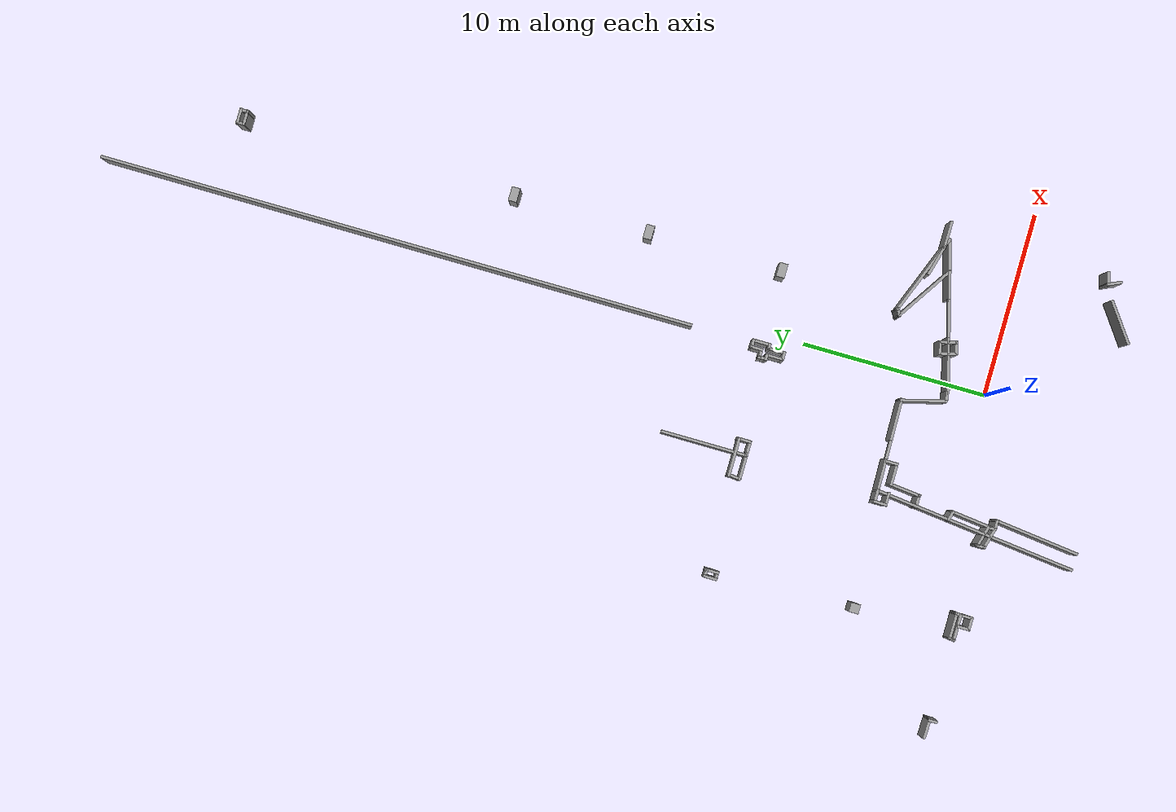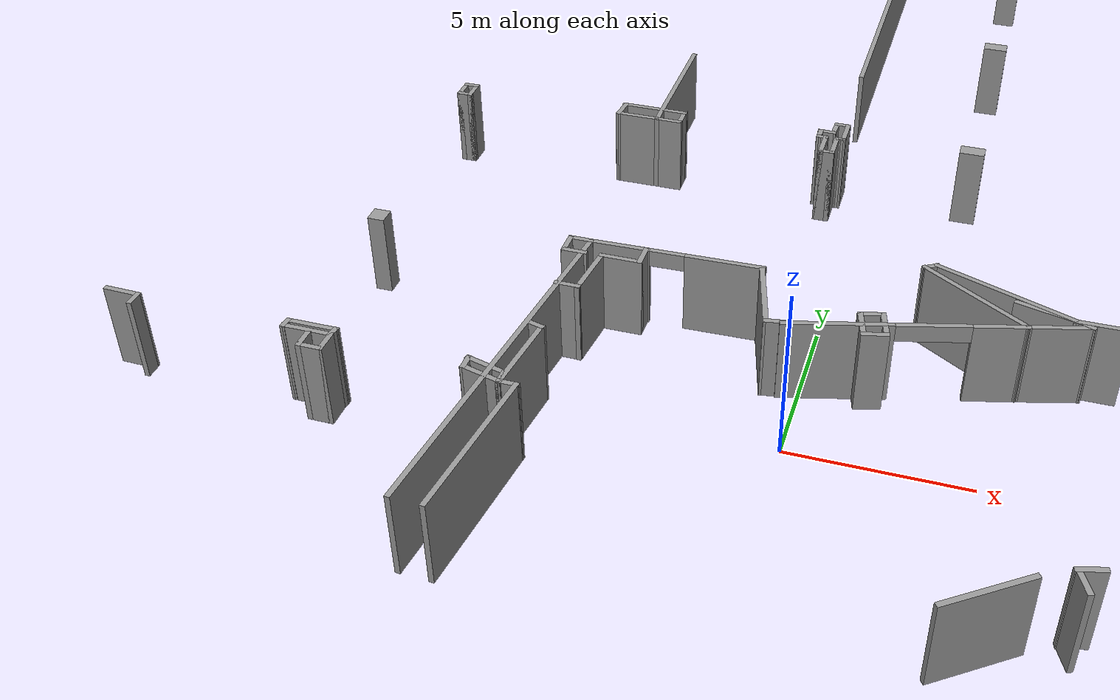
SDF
<sdf version="1.6">
 <model name="car_parking_underground_big_1">
  <pose>-9.36123 -7.37411 0 0 -0 0</pose>
  <link name="Wall_217">
   <collision name="Wall_217_Collision">
    <geometry><box><size>0.5 0.15 2.5</size></box></geometry>
    <pose>0 0 1.25 0 -0 0</pose>
   </collision>
   <visual name="Wall_217_Visual">
    <pose>0 0 1.25 0 -0 0</pose>
    <geometry><box><size>0.5 0.15 2.5</size></box></geometry>
    <material>
     <script><uri>file://media/materials/scripts/gazebo.material</uri><name>Gazebo/Grey</name></script>
     <ambient>1 1 1 1</ambient>
    </material>
    <meta><layer>0</layer></meta>
   </visual>
   <pose>1.5609 5.68266 0 0 -0 -1.5708</pose>
  </link>
  <link name="Wall_218">
   <collision name="Wall_218_Collision">
    <geometry><box><size>1.25 0.15 2.5</size></box></geometry>
    <pose>0 0 1.25 0 -0 0</pose>
   </collision>
   <visual name="Wall_218_Visual">
    <pose>0 0 1.25 0 -0 0</pose>
    <geometry><box><size>1.25 0.15 2.5</size></box></geometry>
    <material>
     <script><uri>file://media/materials/scripts/gazebo.material</uri><name>Gazebo/Grey</name></script>
     <ambient>1 1 1 1</ambient>
    </material>
    <meta><layer>0</layer></meta>
   </visual>
   <pose>2.09216 5.36531 0 0 -0 -0.261799</pose>
  </link>
  <link name="Wall_219">
   <collision name="Wall_219_Collision">
    <geometry><box><size>0.5 0.15 2.5</size></box></geometry>
    <pose>0 0 1.25 0 -0 0</pose>
   </collision>
   <visual name="Wall_219_Visual">
    <pose>0 0 1.25 0 -0 0</pose>
    <geometry><box><size>0.5 0.15 2.5</size></box></geometry>
    <material>
     <script><uri>file://media/materials/scripts/gazebo.material</uri><name>Gazebo/Grey</name></script>
     <ambient>1 1 1 1</ambient>
    </material>
    <meta><layer>0</layer></meta>
   </visual>
   <pose>2.62342 5.39796 0 0 -0 1.5708</pose>
  </link>
  <link name="Wall_220">
   <collision name="Wall_220_Collision">
    <geometry><box><size>1.25 0.15 2.5</size></box></geometry>
    <pose>0 0 1.25 0 -0 0</pose>
   </collision>
   <visual name="Wall_220_Visual">
    <pose>0 0 1.25 0 -0 0</pose>
    <geometry><box><size>1.25 0.15 2.5</size></box></geometry>
    <material>
     <script><uri>file://media/materials/scripts/gazebo.material</uri><name>Gazebo/Grey</name></script>
     <ambient>1 1 1 1</ambient>
    </material>
    <meta><layer>0</layer></meta>
   </visual>
   <pose>2.09216 5.71531 0 0 -0 2.87979</pose>
  </link>
  <link name="Wall_223">
   <collision name="Wall_223_Collision">
    <geometry><box><size>1.75 0.15 2.5</size></box></geometry>
    <pose>0 0 1.25 0 -0 0</pose>
   </collision>
   <visual name="Wall_223_Visual">
    <pose>0 0 1.25 0 -0 0</pose>
    <geometry><box><size>1.75 0.15 2.5</size></box></geometry>
    <material>
     <script><uri>file://media/materials/scripts/gazebo.material</uri><name>Gazebo/Grey</name></script>
     <ambient>1 1 1 1</ambient>
    </material>
    <meta><layer>0</layer></meta>
   </visual>
   <pose>15.3498 11.9828 0 0 -0 -0.261799</pose>
  </link>
  <link name="Wall_224">
   <collision name="Wall_224_Collision">
    <geometry><box><size>1.5 0.15 2.5</size></box></geometry>
    <pose>0 0 1.25 0 -0 0</pose>
   </collision>
   <visual name="Wall_224_Visual">
    <pose>0 0 1.25 0 -0 0</pose>
    <geometry><box><size>1.5 0.15 2.5</size></box></geometry>
    <material>
     <script><uri>file://media/materials/scripts/gazebo.material</uri><name>Gazebo/Grey</name></script>
     <ambient>1 1 1 1</ambient>
    </material>
    <meta><layer>0</layer></meta>
   </visual>
   <pose>16.7975 11.7757 0 0 -0 0</pose>
  </link>
  <link name="Wall_28">
   <collision name="Wall_28_Collision">
    <geometry><box><size>2.47805 0.15 2.5</size></box></geometry>
    <pose>0 0 1.25 0 -0 0</pose>
   </collision>
   <visual name="Wall_28_Visual">
    <pose>0 0 1.25 0 -0 0</pose>
    <geometry><box><size>2.47805 0.15 2.5</size></box></geometry>
    <material>
     <script><uri>file://media/materials/scripts/gazebo.material</uri><name>Gazebo/Grey</name></script>
     <ambient>1 1 1 1</ambient>
    </material>
    <meta><layer>0</layer></meta>
   </visual>
   <pose>14.8476 1.85437 0 0 -0 0.628667</pose>
  </link>
  <link name="Wall_33">
   <collision name="Wall_33_Collision">
    <geometry><box><size>4.67494 0.15 2.5</size></box></geometry>
    <pose>0 0 1.25 0 -0 0</pose>
   </collision>
   <visual name="Wall_33_Visual">
    <pose>0 0 1.25 0 -0 0</pose>
    <geometry><box><size>4.67494 0.15 2.5</size></box></geometry>
    <material>
     <script><uri>file://media/materials/scripts/gazebo.material</uri><name>Gazebo/Grey</name></script>
     <ambient>1 1 1 1</ambient>
    </material>
    <meta><layer>0</layer></meta>
   </visual>
   <pose>14.4486 12.4344 0 0 -0 2.773</pose>
  </link>
  <link name="Wall_34">
   <collision name="Wall_34_Collision">
    <geometry><box><size>0.5 0.15 2.5</size></box></geometry>
    <pose>0 0 1.25 0 -0 0</pose>
   </collision>
   <visual name="Wall_34_Visual">
    <pose>0 0 1.25 0 -0 0</pose>
    <geometry><box><size>0.5 0.15 2.5</size></box></geometry>
    <material>
     <script><uri>file://media/materials/scripts/gazebo.material</uri><name>Gazebo/Grey</name></script>
     <ambient>1 1 1 1</ambient>
    </material>
    <meta><layer>0</layer></meta>
   </visual>
   <pose>12.1865 13.162 0 0 -0 -2.61799</pose>
  </link>
  <link name="Wall_35">
   <collision name="Wall_35_Collision">
    <geometry><box><size>3.62849 0.15 2.5</size></box></geometry>
    <pose>0 0 1.25 0 -0 0</pose>
   </collision>
   <visual name="Wall_35_Visual">
    <pose>0 0 1.25 0 -0 0</pose>
    <geometry><box><size>3.62849 0.15 2.5</size></box></geometry>
    <material>
     <script><uri>file://media/materials/scripts/gazebo.material</uri><name>Gazebo/Grey</name></script>
     <ambient>1 1 1 1</ambient>
    </material>
    <meta><layer>0</layer></meta>
   </visual>
   <pose>13.4916 12.1241 0 0 -0 -0.578154</pose>
  </link>
  <link name="Wall_36">
   <pose>11.8813 10.3519 0 0 -0 -2.87979</pose>
   <visual name="Wall_36_Visual_0">
    <pose>-2.49803 0 1.25 0 -0 0</pose>
    <geometry><box><size>1.50394 0.15 2.5</size></box></geometry>
    <material>
     <script><uri>file://media/materials/scripts/gazebo.material</uri><name>Gazebo/Grey</name></script>
     <ambient>1 1 1 1</ambient>
    </material>
    <meta><layer>0</layer></meta>
   </visual>
   <collision name="Wall_36_Collision_0">
    <geometry><box><size>1.50394 0.15 2.5</size></box></geometry>
    <pose>-2.49803 0 1.25 0 -0 0</pose>
   </collision>
   <visual name="Wall_36_Visual_1">
    <pose>1.75197 0 1.25 0 -0 0</pose>
    <geometry><box><size>2.99606 0.15 2.5</size></box></geometry>
    <material>
     <script><uri>file://media/materials/scripts/gazebo.material</uri><name>Gazebo/Grey</name></script>
     <ambient>1 1 1 1</ambient>
    </material>
    <meta><layer>0</layer></meta>
   </visual>
   <collision name="Wall_36_Collision_1">
    <geometry><box><size>2.99606 0.15 2.5</size></box></geometry>
    <pose>1.75197 0 1.25 0 -0 0</pose>
   </collision>
   <visual name="Wall_36_Visual_2">
    <pose>-0.746059 0 2.25 0 -0 0</pose>
    <geometry><box><size>2 0.15 0.5</size></box></geometry>
    <material>
     <script><uri>file://media/materials/scripts/gazebo.material</uri><name>Gazebo/Grey</name></script>
     <ambient>1 1 1 1</ambient>
    </material>
    <meta><layer>0</layer></meta>
   </visual>
   <collision name="Wall_36_Collision_2">
    <geometry><box><size>2 0.15 0.5</size></box></geometry>
    <pose>-0.746059 0 2.25 0 -0 0</pose>
   </collision>
  </link>
  <link name="Wall_37">
   <collision name="Wall_37_Collision">
    <geometry><box><size>0.59124 0.15 2.5</size></box></geometry>
    <pose>0 0 1.25 0 -0 0</pose>
   </collision>
   <visual name="Wall_37_Visual">
    <pose>0 0 1.25 0 -0 0</pose>
    <geometry><box><size>0.59124 0.15 2.5</size></box></geometry>
    <material>
     <script><uri>file://media/materials/scripts/gazebo.material</uri><name>Gazebo/Grey</name></script>
     <ambient>1 1 1 1</ambient>
    </material>
    <meta><layer>0</layer></meta>
   </visual>
   <pose>8.59658 9.53088 0 0 -0 -2.98491</pose>
  </link>
  <link name="Wall_38">
   <collision name="Wall_38_Collision">
    <geometry><box><size>2.5 0.15 2.5</size></box></geometry>
    <pose>0 0 1.25 0 -0 0</pose>
   </collision>
   <visual name="Wall_38_Visual">
    <pose>0 0 1.25 0 -0 0</pose>
    <geometry><box><size>2.5 0.15 2.5</size></box></geometry>
    <material>
     <script><uri>file://media/materials/scripts/gazebo.material</uri><name>Gazebo/Grey</name></script>
     <ambient>1 1 1 1</ambient>
    </material>
    <meta><layer>0</layer></meta>
   </visual>
   <pose>8.07455 10.6314 0 0 -0 1.8326</pose>
  </link>
  <link name="Wall_39">
   <pose>5.34919 11.7136 0 0 -0 -3.12011</pose>
   <visual name="Wall_39_Visual_0">
    <pose>-1.39099 0 1.25 0 -0 0</pose>
    <geometry><box><size>2.28201 0.15 2.5</size></box></geometry>
    <material>
     <script><uri>file://media/materials/scripts/gazebo.material</uri><name>Gazebo/Grey</name></script>
     <ambient>1 1 1 1</ambient>
    </material>
    <meta><layer>0</layer></meta>
   </visual>
   <collision name="Wall_39_Collision_0">
    <geometry><box><size>2.28201 0.15 2.5</size></box></geometry>
    <pose>-1.39099 0 1.25 0 -0 0</pose>
   </collision>
   <visual name="Wall_39_Visual_1">
    <pose>1.64101 0 1.25 0 -0 0</pose>
    <geometry><box><size>1.78198 0.15 2.5</size></box></geometry>
    <material>
     <script><uri>file://media/materials/scripts/gazebo.material</uri><name>Gazebo/Grey</name></script>
     <ambient>1 1 1 1</ambient>
    </material>
    <meta><layer>0</layer></meta>
   </visual>
   <collision name="Wall_39_Collision_1">
    <geometry><box><size>1.78198 0.15 2.5</size></box></geometry>
    <pose>1.64101 0 1.25 0 -0 0</pose>
   </collision>
   <visual name="Wall_39_Visual_2">
    <pose>0.250018 0 2.25 0 -0 0</pose>
    <geometry><box><size>1 0.15 0.5</size></box></geometry>
    <material>
     <script><uri>file://media/materials/scripts/gazebo.material</uri><name>Gazebo/Grey</name></script>
     <ambient>1 1 1 1</ambient>
    </material>
    <meta><layer>0</layer></meta>
   </visual>
   <collision name="Wall_39_Collision_2">
    <geometry><box><size>1 0.15 0.5</size></box></geometry>
    <pose>0.250018 0 2.25 0 -0 0</pose>
   </collision>
  </link>
  <link name="Wall_391">
   <collision name="Wall_391_Collision">
    <geometry><box><size>0.75 0.45 2.5</size></box></geometry>
    <pose>0 0 1.25 0 -0 0</pose>
   </collision>
   <visual name="Wall_391_Visual">
    <pose>0 0 1.25 0 -0 0</pose>
    <geometry><box><size>0.75 0.45 2.5</size></box></geometry>
    <material>
     <script><uri>file://media/materials/scripts/gazebo.material</uri><name>Gazebo/Grey</name></script>
     <ambient>1 1 1 1</ambient>
    </material>
    <meta><layer>0</layer></meta>
   </visual>
   <pose>12.6174 26.8923 0 0 -0 0</pose>
  </link>
  <link name="Wall_396">
   <collision name="Wall_396_Collision">
    <geometry><box><size>0.75 0.45 2.5</size></box></geometry>
    <pose>0 0 1.25 0 -0 0</pose>
   </collision>
   <visual name="Wall_396_Visual">
    <pose>0 0 1.25 0 -0 0</pose>
    <geometry><box><size>0.75 0.45 2.5</size></box></geometry>
    <material>
     <script><uri>file://media/materials/scripts/gazebo.material</uri><name>Gazebo/Grey</name></script>
     <ambient>1 1 1 1</ambient>
    </material>
    <meta><layer>0</layer></meta>
   </visual>
   <pose>12.6092 19.6331 0 0 -0 0</pose>
  </link>
  <link name="Wall_40">
   <collision name="Wall_40_Collision">
    <geometry><box><size>11.0603 0.15 2.5</size></box></geometry>
    <pose>0 0 1.25 0 -0 0</pose>
   </collision>
   <visual name="Wall_40_Visual">
    <pose>0 0 1.25 0 -0 0</pose>
    <geometry><box><size>11.0603 0.15 2.5</size></box></geometry>
    <material>
     <script><uri>file://media/materials/scripts/gazebo.material</uri><name>Gazebo/Grey</name></script>
     <ambient>1 1 1 1</ambient>
    </material>
    <meta><layer>0</layer></meta>
   </visual>
   <pose>2.2875 6.23938 0 0 -0 -1.68198</pose>
  </link>
  <link name="Wall_401">
   <collision name="Wall_401_Collision">
    <geometry><box><size>0.5 0.15 2.5</size></box></geometry>
    <pose>0 0 1.25 0 -0 0</pose>
   </collision>
   <visual name="Wall_401_Visual">
    <pose>0 0 1.25 0 -0 0</pose>
    <geometry><box><size>0.5 0.15 2.5</size></box></geometry>
    <material>
     <script><uri>file://media/materials/scripts/gazebo.material</uri><name>Gazebo/Grey</name></script>
     <ambient>1 1 1 1</ambient>
    </material>
    <meta><layer>0</layer></meta>
   </visual>
   <pose>8.49677 20.0573 0 0 -0 0</pose>
  </link>
  <link name="Wall_402">
   <collision name="Wall_402_Collision">
    <geometry><box><size>1.02589 0.15 2.5</size></box></geometry>
    <pose>0 0 1.25 0 -0 0</pose>
   </collision>
   <visual name="Wall_402_Visual">
    <pose>0 0 1.25 0 -0 0</pose>
    <geometry><box><size>1.02589 0.15 2.5</size></box></geometry>
    <material>
     <script><uri>file://media/materials/scripts/gazebo.material</uri><name>Gazebo/Grey</name></script>
     <ambient>1 1 1 1</ambient>
    </material>
    <meta><layer>0</layer></meta>
   </visual>
   <pose>8.67347 19.6193 0 0 -0 -1.56691</pose>
  </link>
  <link name="Wall_403">
   <collision name="Wall_403_Collision">
    <geometry><box><size>0.25 0.15 2.5</size></box></geometry>
    <pose>0 0 1.25 0 -0 0</pose>
   </collision>
   <visual name="Wall_403_Visual">
    <pose>0 0 1.25 0 -0 0</pose>
    <geometry><box><size>0.25 0.15 2.5</size></box></geometry>
    <material>
     <script><uri>file://media/materials/scripts/gazebo.material</uri><name>Gazebo/Grey</name></script>
     <ambient>1 1 1 1</ambient>
    </material>
    <meta><layer>0</layer></meta>
   </visual>
   <pose>8.62517 19.1814 0 0 -0 3.14159</pose>
  </link>
  <link name="Wall_404">
   <collision name="Wall_404_Collision">
    <geometry><box><size>0.25 0.15 2.5</size></box></geometry>
    <pose>0 0 1.25 0 -0 0</pose>
   </collision>
   <visual name="Wall_404_Visual">
    <pose>0 0 1.25 0 -0 0</pose>
    <geometry><box><size>0.25 0.15 2.5</size></box></geometry>
    <material>
     <script><uri>file://media/materials/scripts/gazebo.material</uri><name>Gazebo/Grey</name></script>
     <ambient>1 1 1 1</ambient>
    </material>
    <meta><layer>0</layer></meta>
   </visual>
   <pose>8.52517 19.1814 0 0 -0 3.14159</pose>
  </link>
  <link name="Wall_405">
   <collision name="Wall_405_Collision">
    <geometry><box><size>1 0.15 2.5</size></box></geometry>
    <pose>0 0 1.25 0 -0 0</pose>
   </collision>
   <visual name="Wall_405_Visual">
    <pose>0 0 1.25 0 -0 0</pose>
    <geometry><box><size>1 0.15 2.5</size></box></geometry>
    <material>
     <script><uri>file://media/materials/scripts/gazebo.material</uri><name>Gazebo/Grey</name></script>
     <ambient>1 1 1 1</ambient>
    </material>
    <meta><layer>0</layer></meta>
   </visual>
   <pose>8.47517 18.7564 0 0 -0 -1.5708</pose>
  </link>
  <link name="Wall_406">
   <collision name="Wall_406_Collision">
    <geometry><box><size>0.5 0.15 2.5</size></box></geometry>
    <pose>0 0 1.25 0 -0 0</pose>
   </collision>
   <visual name="Wall_406_Visual">
    <pose>0 0 1.25 0 -0 0</pose>
    <geometry><box><size>0.5 0.15 2.5</size></box></geometry>
    <material>
     <script><uri>file://media/materials/scripts/gazebo.material</uri><name>Gazebo/Grey</name></script>
     <ambient>1 1 1 1</ambient>
    </material>
    <meta><layer>0</layer></meta>
   </visual>
   <pose>8.30017 18.3314 0 0 -0 3.14159</pose>
  </link>
  <link name="Wall_407">
   <collision name="Wall_407_Collision">
    <geometry><box><size>1 0.15 2.5</size></box></geometry>
    <pose>0 0 1.25 0 -0 0</pose>
   </collision>
   <visual name="Wall_407_Visual">
    <pose>0 0 1.25 0 -0 0</pose>
    <geometry><box><size>1 0.15 2.5</size></box></geometry>
    <material>
     <script><uri>file://media/materials/scripts/gazebo.material</uri><name>Gazebo/Grey</name></script>
     <ambient>1 1 1 1</ambient>
    </material>
    <meta><layer>0</layer></meta>
   </visual>
   <pose>8.12517 18.7564 0 0 -0 1.5708</pose>
  </link>
  <link name="Wall_408">
   <collision name="Wall_408_Collision">
    <geometry><box><size>0.369827 0.15 2.5</size></box></geometry>
    <pose>0 0 1.25 0 -0 0</pose>
   </collision>
   <visual name="Wall_408_Visual">
    <pose>0 0 1.25 0 -0 0</pose>
    <geometry><box><size>0.369827 0.15 2.5</size></box></geometry>
    <material>
     <script><uri>file://media/materials/scripts/gazebo.material</uri><name>Gazebo/Grey</name></script>
     <ambient>1 1 1 1</ambient>
    </material>
    <meta><layer>0</layer></meta>
   </visual>
   <pose>8.01542 19.1754 0 0 -0 -3.08731</pose>
  </link>
  <link name="Wall_409">
   <collision name="Wall_409_Collision">
    <geometry><box><size>0.5 0.15 2.5</size></box></geometry>
    <pose>0 0 1.25 0 -0 0</pose>
   </collision>
   <visual name="Wall_409_Visual">
    <pose>0 0 1.25 0 -0 0</pose>
    <geometry><box><size>0.5 0.15 2.5</size></box></geometry>
    <material>
     <script><uri>file://media/materials/scripts/gazebo.material</uri><name>Gazebo/Grey</name></script>
     <ambient>1 1 1 1</ambient>
    </material>
    <meta><layer>0</layer></meta>
   </visual>
   <pose>7.90567 19.3445 0 0 -0 1.5708</pose>
  </link>
  <link name="Wall_410">
   <collision name="Wall_410_Collision">
    <geometry><box><size>0.570358 0.15 2.5</size></box></geometry>
    <pose>0 0 1.25 0 -0 0</pose>
   </collision>
   <visual name="Wall_410_Visual">
    <pose>0 0 1.25 0 -0 0</pose>
    <geometry><box><size>0.570358 0.15 2.5</size></box></geometry>
    <material>
     <script><uri>file://media/materials/scripts/gazebo.material</uri><name>Gazebo/Grey</name></script>
     <ambient>1 1 1 1</ambient>
    </material>
    <meta><layer>0</layer></meta>
   </visual>
   <pose>8.09826 19.5195 0 0 -0 0</pose>
  </link>
  <link name="Wall_411">
   <collision name="Wall_411_Collision">
    <geometry><box><size>0.687973 0.15 2.5</size></box></geometry>
    <pose>0 0 1.25 0 -0 0</pose>
   </collision>
   <visual name="Wall_411_Visual">
    <pose>0 0 1.25 0 -0 0</pose>
    <geometry><box><size>0.687973 0.15 2.5</size></box></geometry>
    <material>
     <script><uri>file://media/materials/scripts/gazebo.material</uri><name>Gazebo/Grey</name></script>
     <ambient>1 1 1 1</ambient>
    </material>
    <meta><layer>0</layer></meta>
   </visual>
   <pose>8.3151 19.7884 0 0 -0 1.54602</pose>
  </link>
  <link name="Wall_413">
   <collision name="Wall_413_Collision">
    <geometry><box><size>4.71462 0.15 2.5</size></box></geometry>
    <pose>0 0 1.25 0 -0 0</pose>
   </collision>
   <visual name="Wall_413_Visual">
    <pose>0 0 1.25 0 -0 0</pose>
    <geometry><box><size>4.71462 0.15 2.5</size></box></geometry>
    <material>
     <script><uri>file://media/materials/scripts/gazebo.material</uri><name>Gazebo/Grey</name></script>
     <ambient>1 1 1 1</ambient>
    </material>
    <meta><layer>0</layer></meta>
   </visual>
   <pose>2.76177 21.0549 0 0 -0 -1.5708</pose>
  </link>
  <link name="Wall_414">
   <collision name="Wall_414_Collision">
    <geometry><box><size>0.889164 0.15 2.5</size></box></geometry>
    <pose>0 0 1.25 0 -0 0</pose>
   </collision>
   <visual name="Wall_414_Visual">
    <pose>0 0 1.25 0 -0 0</pose>
    <geometry><box><size>0.889164 0.15 2.5</size></box></geometry>
    <material>
     <script><uri>file://media/materials/scripts/gazebo.material</uri><name>Gazebo/Grey</name></script>
     <ambient>1 1 1 1</ambient>
    </material>
    <meta><layer>0</layer></meta>
   </visual>
   <pose>3.13135 18.7726 0 0 -0 0</pose>
  </link>
  <link name="Wall_415">
   <collision name="Wall_415_Collision">
    <geometry><box><size>0.75 0.15 2.5</size></box></geometry>
    <pose>0 0 1.25 0 -0 0</pose>
   </collision>
   <visual name="Wall_415_Visual">
    <pose>0 0 1.25 0 -0 0</pose>
    <geometry><box><size>0.75 0.15 2.5</size></box></geometry>
    <material>
     <script><uri>file://media/materials/scripts/gazebo.material</uri><name>Gazebo/Grey</name></script>
     <ambient>1 1 1 1</ambient>
    </material>
    <meta><layer>0</layer></meta>
   </visual>
   <pose>3.50093 19.108 0 0 -0 1.5708</pose>
  </link>
  <link name="Wall_416">
   <collision name="Wall_416_Collision">
    <geometry><box><size>2.13446 0.15 2.5</size></box></geometry>
    <pose>0 0 1.25 0 -0 0</pose>
   </collision>
   <visual name="Wall_416_Visual">
    <pose>0 0 1.25 0 -0 0</pose>
    <geometry><box><size>2.13446 0.15 2.5</size></box></geometry>
    <material>
     <script><uri>file://media/materials/scripts/gazebo.material</uri><name>Gazebo/Grey</name></script>
     <ambient>1 1 1 1</ambient>
    </material>
    <meta><layer>0</layer></meta>
   </visual>
   <pose>2.5087 19.3726 0 0 -0 3.14159</pose>
  </link>
  <link name="Wall_417">
   <collision name="Wall_417_Collision">
    <geometry><box><size>0.753991 0.15 2.5</size></box></geometry>
    <pose>0 0 1.25 0 -0 0</pose>
   </collision>
   <visual name="Wall_417_Visual">
    <pose>0 0 1.25 0 -0 0</pose>
    <geometry><box><size>0.753991 0.15 2.5</size></box></geometry>
    <material>
     <script><uri>file://media/materials/scripts/gazebo.material</uri><name>Gazebo/Grey</name></script>
     <ambient>1 1 1 1</ambient>
    </material>
    <meta><layer>0</layer></meta>
   </visual>
   <pose>1.51719 19.0726 0 0 -0 -1.68582</pose>
  </link>
  <link name="Wall_418">
   <collision name="Wall_418_Collision">
    <geometry><box><size>1.5 0.15 2.5</size></box></geometry>
    <pose>0 0 1.25 0 -0 0</pose>
   </collision>
   <visual name="Wall_418_Visual">
    <pose>0 0 1.25 0 -0 0</pose>
    <geometry><box><size>1.5 0.15 2.5</size></box></geometry>
    <material>
     <script><uri>file://media/materials/scripts/gazebo.material</uri><name>Gazebo/Grey</name></script>
     <ambient>1 1 1 1</ambient>
    </material>
    <meta><layer>0</layer></meta>
   </visual>
   <pose>2.15752 18.7726 0 0 -0 0</pose>
  </link>
  <link name="Wall_420">
   <collision name="Wall_420_Collision">
    <geometry><box><size>0.5 0.15 2.5</size></box></geometry>
    <pose>0 0 1.25 0 -0 0</pose>
   </collision>
   <visual name="Wall_420_Visual">
    <pose>0 0 1.25 0 -0 0</pose>
    <geometry><box><size>0.5 0.15 2.5</size></box></geometry>
    <material>
     <script><uri>file://media/materials/scripts/gazebo.material</uri><name>Gazebo/Grey</name></script>
     <ambient>1 1 1 1</ambient>
    </material>
    <meta><layer>0</layer></meta>
   </visual>
   <pose>-3.72323 19.1373 0 0 -0 0</pose>
  </link>
  <link name="Wall_421">
   <collision name="Wall_421_Collision">
    <geometry><box><size>0.75 0.15 2.5</size></box></geometry>
    <pose>0 0 1.25 0 -0 0</pose>
   </collision>
   <visual name="Wall_421_Visual">
    <pose>0 0 1.25 0 -0 0</pose>
    <geometry><box><size>0.75 0.15 2.5</size></box></geometry>
    <material>
     <script><uri>file://media/materials/scripts/gazebo.material</uri><name>Gazebo/Grey</name></script>
     <ambient>1 1 1 1</ambient>
    </material>
    <meta><layer>0</layer></meta>
   </visual>
   <pose>-3.54823 18.8373 0 0 -0 -1.5708</pose>
  </link>
  <link name="Wall_422">
   <collision name="Wall_422_Collision">
    <geometry><box><size>0.5 0.15 2.5</size></box></geometry>
    <pose>0 0 1.25 0 -0 0</pose>
   </collision>
   <visual name="Wall_422_Visual">
    <pose>0 0 1.25 0 -0 0</pose>
    <geometry><box><size>0.5 0.15 2.5</size></box></geometry>
    <material>
     <script><uri>file://media/materials/scripts/gazebo.material</uri><name>Gazebo/Grey</name></script>
     <ambient>1 1 1 1</ambient>
    </material>
    <meta><layer>0</layer></meta>
   </visual>
   <pose>-3.72323 18.5373 0 0 -0 3.14159</pose>
  </link>
  <link name="Wall_423">
   <collision name="Wall_423_Collision">
    <geometry><box><size>0.75 0.15 2.5</size></box></geometry>
    <pose>0 0 1.25 0 -0 0</pose>
   </collision>
   <visual name="Wall_423_Visual">
    <pose>0 0 1.25 0 -0 0</pose>
    <geometry><box><size>0.75 0.15 2.5</size></box></geometry>
    <material>
     <script><uri>file://media/materials/scripts/gazebo.material</uri><name>Gazebo/Grey</name></script>
     <ambient>1 1 1 1</ambient>
    </material>
    <meta><layer>0</layer></meta>
   </visual>
   <pose>-3.89823 18.8373 0 0 -0 1.5708</pose>
  </link>
  <link name="Wall_502">
   <collision name="Wall_502_Collision">
    <geometry><box><size>0.75 0.45 2.5</size></box></geometry>
    <pose>0 0 1.25 0 -0 0</pose>
   </collision>
   <visual name="Wall_502_Visual">
    <pose>0 0 1.25 0 -0 0</pose>
    <geometry><box><size>0.75 0.45 2.5</size></box></geometry>
    <material>
     <script><uri>file://media/materials/scripts/gazebo.material</uri><name>Gazebo/Grey</name></script>
     <ambient>1 1 1 1</ambient>
    </material>
    <meta><layer>0</layer></meta>
   </visual>
   <pose>12.578 34.2231 0 0 -0 0</pose>
  </link>
  <link name="Wall_524">
   <collision name="Wall_524_Collision">
    <geometry><box><size>0.75 0.15 2.5</size></box></geometry>
    <pose>0 0 1.25 0 -0 0</pose>
   </collision>
   <visual name="Wall_524_Visual">
    <pose>0 0 1.25 0 -0 0</pose>
    <geometry><box><size>0.75 0.15 2.5</size></box></geometry>
    <material>
     <script><uri>file://media/materials/scripts/gazebo.material</uri><name>Gazebo/Grey</name></script>
     <ambient>1 1 1 1</ambient>
    </material>
    <meta><layer>0</layer></meta>
   </visual>
   <pose>16.8856 3.06383 0 0 -0 0.261799</pose>
  </link>
  <link name="Wall_527">
   <collision name="Wall_527_Collision">
    <geometry><box><size>0.799386 0.15 2.5</size></box></geometry>
    <pose>0 0 1.25 0 -0 0</pose>
   </collision>
   <visual name="Wall_527_Visual">
    <pose>0 0 1.25 0 -0 0</pose>
    <geometry><box><size>0.799386 0.15 2.5</size></box></geometry>
    <material>
     <script><uri>file://media/materials/scripts/gazebo.material</uri><name>Gazebo/Grey</name></script>
     <ambient>1 1 1 1</ambient>
    </material>
    <meta><layer>0</layer></meta>
   </visual>
   <pose>16.7423 2.68875 0 0 -0 1.98618</pose>
  </link>
  <link name="Wall_529">
   <collision name="Wall_529_Collision">
    <geometry><box><size>1.5 0.15 2.5</size></box></geometry>
    <pose>0 0 1.25 0 -0 0</pose>
   </collision>
   <visual name="Wall_529_Visual">
    <pose>0 0 1.25 0 -0 0</pose>
    <geometry><box><size>1.5 0.15 2.5</size></box></geometry>
    <material>
     <script><uri>file://media/materials/scripts/gazebo.material</uri><name>Gazebo/Grey</name></script>
     <ambient>1 1 1 1</ambient>
    </material>
    <meta><layer>0</layer></meta>
   </visual>
   <pose>-2.8333 5.939 0 0 -0 0</pose>
  </link>
  <link name="Wall_530">
   <collision name="Wall_530_Collision">
    <geometry><box><size>0.353779 0.15 2.5</size></box></geometry>
    <pose>0 0 1.25 0 -0 0</pose>
   </collision>
   <visual name="Wall_530_Visual">
    <pose>0 0 1.25 0 -0 0</pose>
    <geometry><box><size>0.353779 0.15 2.5</size></box></geometry>
    <material>
     <script><uri>file://media/materials/scripts/gazebo.material</uri><name>Gazebo/Grey</name></script>
     <ambient>1 1 1 1</ambient>
    </material>
    <meta><layer>0</layer></meta>
   </visual>
   <pose>-2.17124 5.83793 0 0 -0 -1.69815</pose>
  </link>
  <link name="Wall_531">
   <collision name="Wall_531_Collision">
    <geometry><box><size>1.5 0.15 2.5</size></box></geometry>
    <pose>0 0 1.25 0 -0 0</pose>
   </collision>
   <visual name="Wall_531_Visual">
    <pose>0 0 1.25 0 -0 0</pose>
    <geometry><box><size>1.5 0.15 2.5</size></box></geometry>
    <material>
     <script><uri>file://media/materials/scripts/gazebo.material</uri><name>Gazebo/Grey</name></script>
     <ambient>1 1 1 1</ambient>
    </material>
    <meta><layer>0</layer></meta>
   </visual>
   <pose>-2.85919 5.71928 0 0 -0 3.14159</pose>
  </link>
  <link name="Wall_533">
   <collision name="Wall_533_Collision">
    <geometry><box><size>0.371237 0.15 2.5</size></box></geometry>
    <pose>0 0 1.25 0 -0 0</pose>
   </collision>
   <visual name="Wall_533_Visual">
    <pose>0 0 1.25 0 -0 0</pose>
    <geometry><box><size>0.371237 0.15 2.5</size></box></geometry>
    <material>
     <script><uri>file://media/materials/scripts/gazebo.material</uri><name>Gazebo/Grey</name></script>
     <ambient>1 1 1 1</ambient>
    </material>
    <meta><layer>0</layer></meta>
   </visual>
   <pose>-3.52124 5.82914 0 0 -0 -1.68805</pose>
  </link>
  <link name="Wall_535">
   <collision name="Wall_535_Collision">
    <geometry><box><size>0.75 0.15 2.5</size></box></geometry>
    <pose>0 0 1.25 0 -0 0</pose>
   </collision>
   <visual name="Wall_535_Visual">
    <pose>0 0 1.25 0 -0 0</pose>
    <geometry><box><size>0.75 0.15 2.5</size></box></geometry>
    <material>
     <script><uri>file://media/materials/scripts/gazebo.material</uri><name>Gazebo/Grey</name></script>
     <ambient>1 1 1 1</ambient>
    </material>
    <meta><layer>0</layer></meta>
   </visual>
   <pose>-2.78418 5.41928 0 0 -0 -1.5708</pose>
  </link>
  <link name="Wall_536">
   <collision name="Wall_536_Collision">
    <geometry><box><size>0.75 0.15 2.5</size></box></geometry>
    <pose>0 0 1.25 0 -0 0</pose>
   </collision>
   <visual name="Wall_536_Visual">
    <pose>0 0 1.25 0 -0 0</pose>
    <geometry><box><size>0.75 0.15 2.5</size></box></geometry>
    <material>
     <script><uri>file://media/materials/scripts/gazebo.material</uri><name>Gazebo/Grey</name></script>
     <ambient>1 1 1 1</ambient>
    </material>
    <meta><layer>0</layer></meta>
   </visual>
   <pose>-2.48419 5.11928 0 0 -0 0</pose>
  </link>
  <link name="Wall_537">
   <collision name="Wall_537_Collision">
    <geometry><box><size>0.75 0.15 2.5</size></box></geometry>
    <pose>0 0 1.25 0 -0 0</pose>
   </collision>
   <visual name="Wall_537_Visual">
    <pose>0 0 1.25 0 -0 0</pose>
    <geometry><box><size>0.75 0.15 2.5</size></box></geometry>
    <material>
     <script><uri>file://media/materials/scripts/gazebo.material</uri><name>Gazebo/Grey</name></script>
     <ambient>1 1 1 1</ambient>
    </material>
    <meta><layer>0</layer></meta>
   </visual>
   <pose>-2.18418 5.41928 0 0 -0 1.5708</pose>
  </link>
  <link name="Wall_541">
   <collision name="Wall_541_Collision">
    <geometry><box><size>0.5 0.15 2.5</size></box></geometry>
    <pose>0 0 1.25 0 -0 0</pose>
   </collision>
   <visual name="Wall_541_Visual">
    <pose>0 0 1.25 0 -0 0</pose>
    <geometry><box><size>0.5 0.15 2.5</size></box></geometry>
    <material>
     <script><uri>file://media/materials/scripts/gazebo.material</uri><name>Gazebo/Grey</name></script>
     <ambient>1 1 1 1</ambient>
    </material>
    <meta><layer>0</layer></meta>
   </visual>
   <pose>-7.89436 5.62132 0 0 -0 1.5708</pose>
  </link>
  <link name="Wall_542">
   <collision name="Wall_542_Collision">
    <geometry><box><size>1.0856 0.15 2.5</size></box></geometry>
    <pose>0 0 1.25 0 -0 0</pose>
   </collision>
   <visual name="Wall_542_Visual">
    <pose>0 0 1.25 0 -0 0</pose>
    <geometry><box><size>1.0856 0.15 2.5</size></box></geometry>
    <material>
     <script><uri>file://media/materials/scripts/gazebo.material</uri><name>Gazebo/Grey</name></script>
     <ambient>1 1 1 1</ambient>
    </material>
    <meta><layer>0</layer></meta>
   </visual>
   <pose>-8.36202 5.80795 0 0 -0 3.11674</pose>
  </link>
  <link name="Wall_570">
   <collision name="Wall_570_Collision">
    <geometry><box><size>0.51 0.5 2.5</size></box></geometry>
    <pose>0 0 1.25 0 -0 0</pose>
   </collision>
   <visual name="Wall_570_Visual">
    <pose>0 0 1.25 0 -0 0</pose>
    <geometry><box><size>0.51 0.5 2.5</size></box></geometry>
    <material>
     <script><uri>file://media/materials/scripts/gazebo.material</uri><name>Gazebo/Grey</name></script>
     <ambient>1 1 1 1</ambient>
    </material>
    <meta><layer>0</layer></meta>
   </visual>
   <pose>-3.35423 11.146 0 0 -0 -1.5708</pose>
  </link>
  <link name="Wall_572">
   <collision name="Wall_572_Collision">
    <geometry><box><size>0.75 0.15 2.5</size></box></geometry>
    <pose>0 0 1.25 0 -0 0</pose>
   </collision>
   <visual name="Wall_572_Visual">
    <pose>0 0 1.25 0 -0 0</pose>
    <geometry><box><size>0.75 0.15 2.5</size></box></geometry>
    <material>
     <script><uri>file://media/materials/scripts/gazebo.material</uri><name>Gazebo/Grey</name></script>
     <ambient>1 1 1 1</ambient>
    </material>
    <meta><layer>0</layer></meta>
   </visual>
   <pose>2.59276 11.6608 0 0 -0 3.14159</pose>
  </link>
  <link name="Wall_573">
   <collision name="Wall_573_Collision">
    <geometry><box><size>0.75 0.15 2.5</size></box></geometry>
    <pose>0 0 1.25 0 -0 0</pose>
   </collision>
   <visual name="Wall_573_Visual">
    <pose>0 0 1.25 0 -0 0</pose>
    <geometry><box><size>0.75 0.15 2.5</size></box></geometry>
    <material>
     <script><uri>file://media/materials/scripts/gazebo.material</uri><name>Gazebo/Grey</name></script>
     <ambient>1 1 1 1</ambient>
    </material>
    <meta><layer>0</layer></meta>
   </visual>
   <pose>2.29276 11.3608 0 0 -0 -1.5708</pose>
  </link>
  <link name="Wall_574">
   <collision name="Wall_574_Collision">
    <geometry><box><size>0.75 0.15 2.5</size></box></geometry>
    <pose>0 0 1.25 0 -0 0</pose>
   </collision>
   <visual name="Wall_574_Visual">
    <pose>0 0 1.25 0 -0 0</pose>
    <geometry><box><size>0.75 0.15 2.5</size></box></geometry>
    <material>
     <script><uri>file://media/materials/scripts/gazebo.material</uri><name>Gazebo/Grey</name></script>
     <ambient>1 1 1 1</ambient>
    </material>
    <meta><layer>0</layer></meta>
   </visual>
   <pose>2.59276 11.0608 0 0 -0 0</pose>
  </link>
  <link name="Wall_576">
   <collision name="Wall_576_Collision">
    <geometry><box><size>0.75 0.15 2.5</size></box></geometry>
    <pose>0 0 1.25 0 -0 0</pose>
   </collision>
   <visual name="Wall_576_Visual">
    <pose>0 0 1.25 0 -0 0</pose>
    <geometry><box><size>0.75 0.15 2.5</size></box></geometry>
    <material>
     <script><uri>file://media/materials/scripts/gazebo.material</uri><name>Gazebo/Grey</name></script>
     <ambient>1 1 1 1</ambient>
    </material>
    <meta><layer>0</layer></meta>
   </visual>
   <pose>4.48796 11.3758 0 0 -0 -1.5708</pose>
  </link>
  <link name="Wall_577">
   <collision name="Wall_577_Collision">
    <geometry><box><size>1.25 0.15 2.5</size></box></geometry>
    <pose>0 0 1.25 0 -0 0</pose>
   </collision>
   <visual name="Wall_577_Visual">
    <pose>0 0 1.25 0 -0 0</pose>
    <geometry><box><size>1.25 0.15 2.5</size></box></geometry>
    <material>
     <script><uri>file://media/materials/scripts/gazebo.material</uri><name>Gazebo/Grey</name></script>
     <ambient>1 1 1 1</ambient>
    </material>
    <meta><layer>0</layer></meta>
   </visual>
   <pose>3.93796 11.0758 0 0 -0 3.14159</pose>
  </link>
  <link name="Wall_578">
   <collision name="Wall_578_Collision">
    <geometry><box><size>1.73459 0.15 2.5</size></box></geometry>
    <pose>0 0 1.25 0 -0 0</pose>
   </collision>
   <visual name="Wall_578_Visual">
    <pose>0 0 1.25 0 -0 0</pose>
    <geometry><box><size>1.73459 0.15 2.5</size></box></geometry>
    <material>
     <script><uri>file://media/materials/scripts/gazebo.material</uri><name>Gazebo/Grey</name></script>
     <ambient>1 1 1 1</ambient>
    </material>
    <meta><layer>0</layer></meta>
   </visual>
   <pose>3.30591 10.2878 0 0 -0 -1.67455</pose>
  </link>
  <link name="Wall_579">
   <collision name="Wall_579_Collision">
    <geometry><box><size>0.75 0.15 2.5</size></box></geometry>
    <pose>0 0 1.25 0 -0 0</pose>
   </collision>
   <visual name="Wall_579_Visual">
    <pose>0 0 1.25 0 -0 0</pose>
    <geometry><box><size>0.75 0.15 2.5</size></box></geometry>
    <material>
     <script><uri>file://media/materials/scripts/gazebo.material</uri><name>Gazebo/Grey</name></script>
     <ambient>1 1 1 1</ambient>
    </material>
    <meta><layer>0</layer></meta>
   </visual>
   <pose>2.92385 9.51506 0 0 -0 3.14159</pose>
  </link>
  <link name="Wall_581">
   <collision name="Wall_581_Collision">
    <geometry><box><size>0.6 0.15 2.5</size></box></geometry>
    <pose>0 0 1.25 0 -0 0</pose>
   </collision>
   <visual name="Wall_581_Visual">
    <pose>0 0 1.25 0 -0 0</pose>
    <geometry><box><size>0.6 0.15 2.5</size></box></geometry>
    <material>
     <script><uri>file://media/materials/scripts/gazebo.material</uri><name>Gazebo/Grey</name></script>
     <ambient>1 1 1 1</ambient>
    </material>
    <meta><layer>0</layer></meta>
   </visual>
   <pose>2.67103 7.63044 0 0 -0 -0.261799</pose>
  </link>
  <link name="Wall_582">
   <collision name="Wall_582_Collision">
    <geometry><box><size>2.51414 0.15 2.5</size></box></geometry>
    <pose>0 0 1.25 0 -0 0</pose>
   </collision>
   <visual name="Wall_582_Visual">
    <pose>0 0 1.25 0 -0 0</pose>
    <geometry><box><size>2.51414 0.15 2.5</size></box></geometry>
    <material>
     <script><uri>file://media/materials/scripts/gazebo.material</uri><name>Gazebo/Grey</name></script>
     <ambient>1 1 1 1</ambient>
    </material>
    <meta><layer>0</layer></meta>
   </visual>
   <pose>2.75589 6.39759 0 0 -0 -1.6831</pose>
  </link>
  <link name="Wall_583">
   <collision name="Wall_583_Collision">
    <geometry><box><size>0.6 0.15 2.5</size></box></geometry>
    <pose>0 0 1.25 0 -0 0</pose>
   </collision>
   <visual name="Wall_583_Visual">
    <pose>0 0 1.25 0 -0 0</pose>
    <geometry><box><size>0.6 0.15 2.5</size></box></geometry>
    <material>
     <script><uri>file://media/materials/scripts/gazebo.material</uri><name>Gazebo/Grey</name></script>
     <ambient>1 1 1 1</ambient>
    </material>
    <meta><layer>0</layer></meta>
   </visual>
   <pose>2.84842 5.22296 0 0 -0 0</pose>
  </link>
  <link name="Wall_584">
   <collision name="Wall_584_Collision">
    <geometry><box><size>4.62079 0.15 2.5</size></box></geometry>
    <pose>0 0 1.25 0 -0 0</pose>
   </collision>
   <visual name="Wall_584_Visual">
    <pose>0 0 1.25 0 -0 0</pose>
    <geometry><box><size>4.62079 0.15 2.5</size></box></geometry>
    <material>
     <script><uri>file://media/materials/scripts/gazebo.material</uri><name>Gazebo/Grey</name></script>
     <ambient>1 1 1 1</ambient>
    </material>
    <meta><layer>0</layer></meta>
   </visual>
   <pose>2.81403 3.00267 0 0 -0 -1.6871</pose>
  </link>
  <link name="Wall_590">
   <collision name="Wall_590_Collision">
    <geometry><box><size>0.75 0.15 2.5</size></box></geometry>
    <pose>0 0 1.25 0 -0 0</pose>
   </collision>
   <visual name="Wall_590_Visual">
    <pose>0 0 1.25 0 -0 0</pose>
    <geometry><box><size>0.75 0.15 2.5</size></box></geometry>
    <material>
     <script><uri>file://media/materials/scripts/gazebo.material</uri><name>Gazebo/Grey</name></script>
     <ambient>1 1 1 1</ambient>
    </material>
    <meta><layer>0</layer></meta>
   </visual>
   <pose>10.9775 10.5599 0 0 -0 0.261799</pose>
  </link>
  <link name="Wall_591">
   <collision name="Wall_591_Collision">
    <geometry><box><size>1 0.15 2.5</size></box></geometry>
    <pose>0 0 1.25 0 -0 0</pose>
   </collision>
   <visual name="Wall_591_Visual">
    <pose>0 0 1.25 0 -0 0</pose>
    <geometry><box><size>1 0.15 2.5</size></box></geometry>
    <material>
     <script><uri>file://media/materials/scripts/gazebo.material</uri><name>Gazebo/Grey</name></script>
     <ambient>1 1 1 1</ambient>
    </material>
    <meta><layer>0</layer></meta>
   </visual>
   <pose>11.3773 10.227 0 0 -0 -1.309</pose>
  </link>
  <link name="Wall_592">
   <collision name="Wall_592_Collision">
    <geometry><box><size>0.75 0.15 2.5</size></box></geometry>
    <pose>0 0 1.25 0 -0 0</pose>
   </collision>
   <visual name="Wall_592_Visual">
    <pose>0 0 1.25 0 -0 0</pose>
    <geometry><box><size>0.75 0.15 2.5</size></box></geometry>
    <material>
     <script><uri>file://media/materials/scripts/gazebo.material</uri><name>Gazebo/Grey</name></script>
     <ambient>1 1 1 1</ambient>
    </material>
    <meta><layer>0</layer></meta>
   </visual>
   <pose>11.1975 9.73881 0 0 -0 -2.87979</pose>
  </link>
  <link name="Wall_593">
   <collision name="Wall_593_Collision">
    <geometry><box><size>1 0.15 2.5</size></box></geometry>
    <pose>0 0 1.25 0 -0 0</pose>
   </collision>
   <visual name="Wall_593_Visual">
    <pose>0 0 1.25 0 -0 0</pose>
    <geometry><box><size>1 0.15 2.5</size></box></geometry>
    <material>
     <script><uri>file://media/materials/scripts/gazebo.material</uri><name>Gazebo/Grey</name></script>
     <ambient>1 1 1 1</ambient>
    </material>
    <meta><layer>0</layer></meta>
   </visual>
   <pose>10.7977 10.0717 0 0 -0 1.8326</pose>
  </link>
  <link name="Wall_598">
   <collision name="Wall_598_Collision">
    <geometry><box><size>1.82149 0.15 2.5</size></box></geometry>
    <pose>0 0 1.25 0 -0 0</pose>
   </collision>
   <visual name="Wall_598_Visual">
    <pose>0 0 1.25 0 -0 0</pose>
    <geometry><box><size>1.82149 0.15 2.5</size></box></geometry>
    <material>
     <script><uri>file://media/materials/scripts/gazebo.material</uri><name>Gazebo/Grey</name></script>
     <ambient>1 1 1 1</ambient>
    </material>
    <meta><layer>0</layer></meta>
   </visual>
   <pose>15.7536 11.3964 0 0 -0 0.269841</pose>
  </link>
  <link name="Wall_6">
   <collision name="Wall_6_Collision">
    <geometry><box><size>32.25 0.15 2.5</size></box></geometry>
    <pose>0 0 1.25 0 -0 0</pose>
   </collision>
   <visual name="Wall_6_Visual">
    <pose>0 0 1.25 0 -0 0</pose>
    <geometry><box><size>32.25 0.15 2.5</size></box></geometry>
    <material>
     <script><uri>file://media/materials/scripts/gazebo.material</uri><name>Gazebo/Grey</name></script>
     <ambient>1 1 1 1</ambient>
    </material>
    <meta><layer>0</layer></meta>
   </visual>
   <pose>8.53211 39.5053 0 0 -0 1.5708</pose>
  </link>
  <link name="Wall_757">
   <collision name="Wall_757_Collision">
    <geometry><box><size>0.845675 0.15 2.5</size></box></geometry>
    <pose>0 0 1.25 0 -0 0</pose>
   </collision>
   <visual name="Wall_757_Visual">
    <pose>0 0 1.25 0 -0 0</pose>
    <geometry><box><size>0.845675 0.15 2.5</size></box></geometry>
    <material>
     <script><uri>file://media/materials/scripts/gazebo.material</uri><name>Gazebo/Grey</name></script>
     <ambient>1 1 1 1</ambient>
    </material>
    <meta><layer>0</layer></meta>
   </visual>
   <pose>12.579 49.2377 0 0 -0 3.14159</pose>
  </link>
  <link name="Wall_758">
   <collision name="Wall_758_Collision">
    <geometry><box><size>0.5 0.15 2.5</size></box></geometry>
    <pose>0 0 1.25 0 -0 0</pose>
   </collision>
   <visual name="Wall_758_Visual">
    <pose>0 0 1.25 0 -0 0</pose>
    <geometry><box><size>0.5 0.15 2.5</size></box></geometry>
    <material>
     <script><uri>file://media/materials/scripts/gazebo.material</uri><name>Gazebo/Grey</name></script>
     <ambient>1 1 1 1</ambient>
    </material>
    <meta><layer>0</layer></meta>
   </visual>
   <pose>12.2311 49.0784 0 0 -0 -1.5708</pose>
  </link>
  <link name="Wall_759">
   <collision name="Wall_759_Collision">
    <geometry><box><size>0.845675 0.15 2.5</size></box></geometry>
    <pose>0 0 1.25 0 -0 0</pose>
   </collision>
   <visual name="Wall_759_Visual">
    <pose>0 0 1.25 0 -0 0</pose>
    <geometry><box><size>0.845675 0.15 2.5</size></box></geometry>
    <material>
     <script><uri>file://media/materials/scripts/gazebo.material</uri><name>Gazebo/Grey</name></script>
     <ambient>1 1 1 1</ambient>
    </material>
    <meta><layer>0</layer></meta>
   </visual>
   <pose>12.579 48.8877 0 0 -0 0</pose>
  </link>
  <link name="Wall_760">
   <collision name="Wall_760_Collision">
    <geometry><box><size>0.5 0.15 2.5</size></box></geometry>
    <pose>0 0 1.25 0 -0 0</pose>
   </collision>
   <visual name="Wall_760_Visual">
    <pose>0 0 1.25 0 -0 0</pose>
    <geometry><box><size>0.5 0.15 2.5</size></box></geometry>
    <material>
     <script><uri>file://media/materials/scripts/gazebo.material</uri><name>Gazebo/Grey</name></script>
     <ambient>1 1 1 1</ambient>
    </material>
    <meta><layer>0</layer></meta>
   </visual>
   <pose>12.9134 49.0627 0 0 -0 1.5708</pose>
  </link>
  <static>1</static>
 </model>
</sdf>
